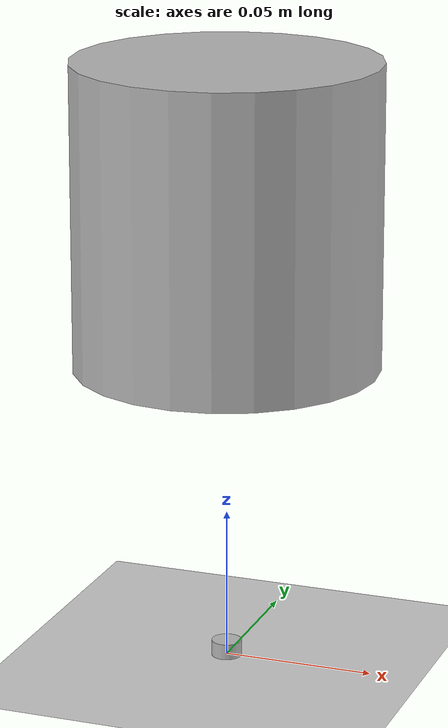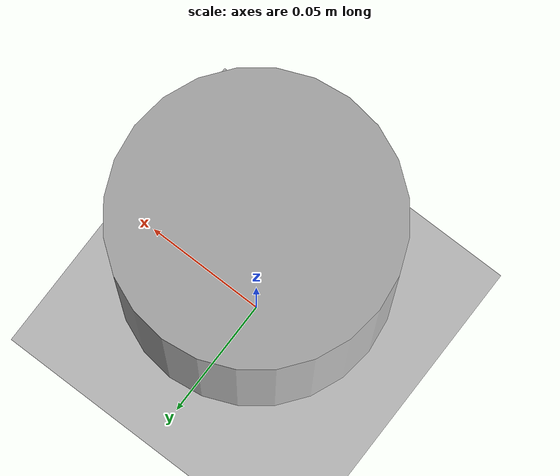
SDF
<?xml version="1.0"?>
<sdf version="1.4">
  <world name="default">

    <!-- Ground Plane -->
    <include>
      <uri>model://ground_plane</uri>
    </include>

    <include>
      <uri>model://sun</uri>
    </include>

    <model name="actuator_magnet">
      <pose>0 0 0.15 0 0 0</pose>
      <static>true</static>
      <link name="magnet">
        <inertial>
          <mass>4.0</mass>
        </inertial>
        <collision name="collision">
          <geometry>
            <cylinder>
              <radius>0.05</radius>
              <length>0.1</length>
            </cylinder>
          </geometry>
        </collision>

        <visual name="visual">
          <geometry>
            <cylinder>
              <radius>0.05</radius>
              <length>0.1</length>
            </cylinder>
          </geometry>
        </visual>
      </link>
      <plugin name="dipole_magnet" filename="libgazebo_dipole_magnet.so">
          <bodyName>magnet</bodyName>
          <dipole_moment>0 0 10</dipole_moment>
          <xyzOffset>0 0 0</xyzOffset>
      </plugin>
    </model>

    <model name="capsule_magnet">
      <pose>0 0 0 0 0 0</pose>
      <link name="magnet">
        <inertial>
          <mass>0.01</mass>
          <inertia>
            <ixx>1.8e-7</ixx>
            <ixy>0</ixy>
            <ixz>0</ixz>
            <iyy>1.8e-7</iyy>
            <iyz>0</iyz>
            <izz>1.543e-7</izz>
          </inertia>
        </inertial>
        <collision name="collision">
          <geometry>
            <cylinder>
              <radius>0.005</radius>
              <length>0.01</length>
            </cylinder>
          </geometry>
        </collision>

        <visual name="visual">
          <geometry>
            <cylinder>
              <radius>0.005</radius>
              <length>0.01</length>
            </cylinder>
          </geometry>
        </visual>
      </link>

      <plugin name="dipole_magnet" filename="libgazebo_dipole_magnet.so">
        <bodyName>magnet</bodyName>
        <dipole_moment>0 0 1.26</dipole_moment>
        <!-- Set to false if not using ROS -->
        <shouldPublish>true</shouldPublish>
        <topicNs>capsule</topicNs>
        <updateRate>100</updateRate>
      </plugin>
    </model>

  </world>
</sdf>
